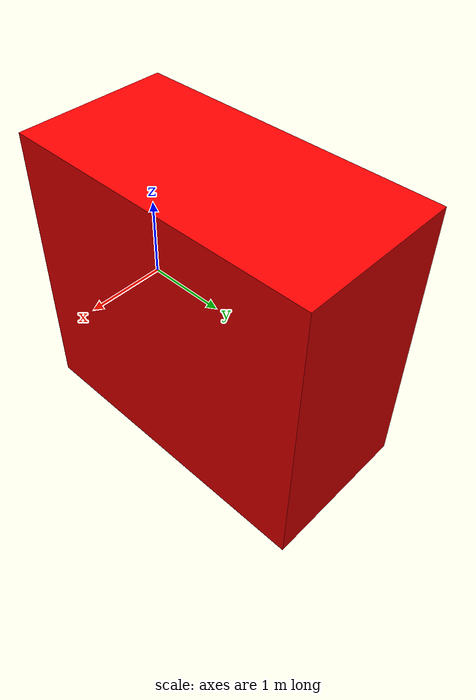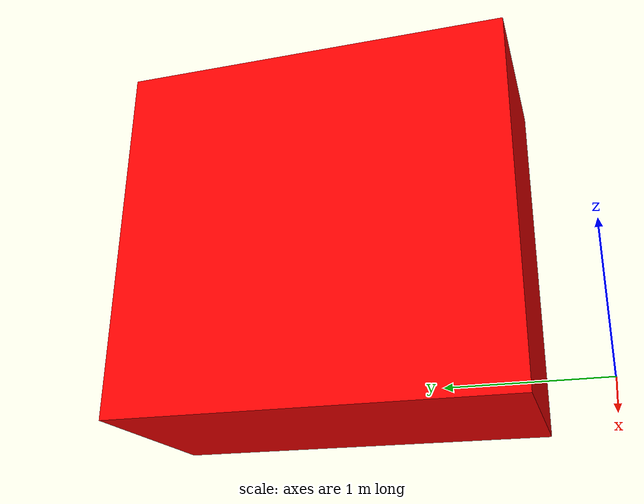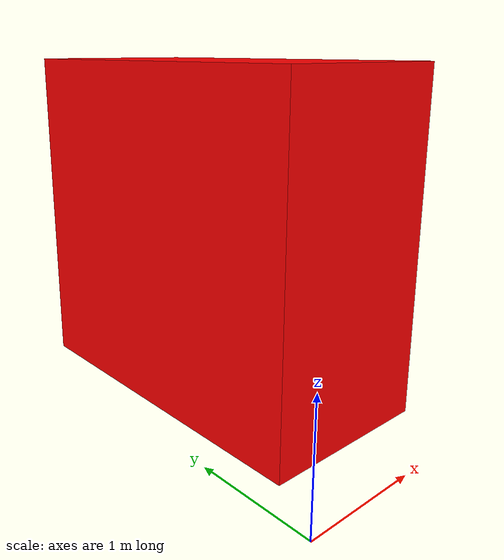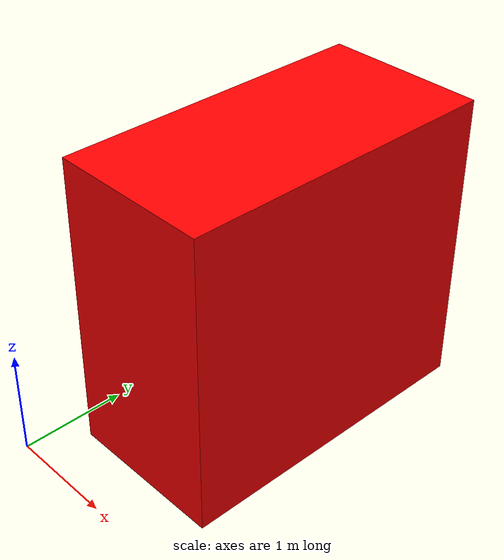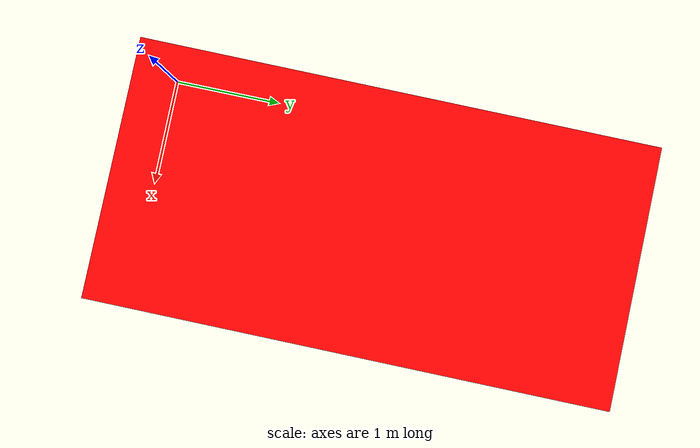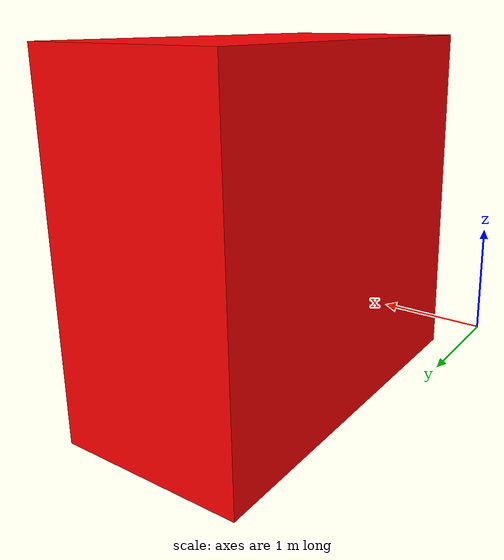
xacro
<?xml version="1.0"?>
<robot xmlns:xacro="http://www.ros.org/wiki/xacro" name="parked_car">

  <xacro:property name="Lenght" value="3" />
  <xacro:property name="width" value="1.5" />
  <xacro:property name="height" value="2.8" />
  <xacro:property name="mass" value="1000" />
  <xacro:property name="name" value="parked_car" />
    <link name="${name}/body_link">
      <visual>
        <origin xyz="1 2 1.4" rpy="0 0 1.57" />
        <geometry>
          <box size="${Lenght} ${width} ${height}"/>
        </geometry>
        <material name="red">
          <color rgba="1 0 0 1"/>
        </material>
      </visual>
      <collision>
        <origin xyz="0 0 0" rpy="0 0 0" />
        <geometry>
           <box size="${Lenght} ${width} ${height}"/>
        </geometry>
      </collision>
      <xacro:default_inertial mass="10"/>
    </link>
</robot>
